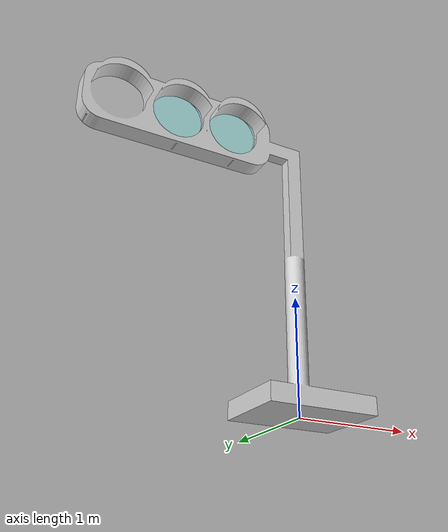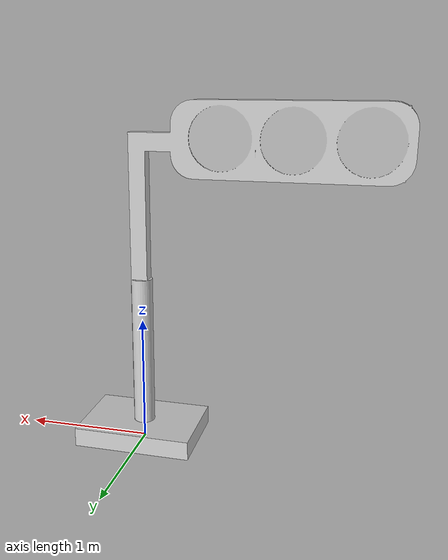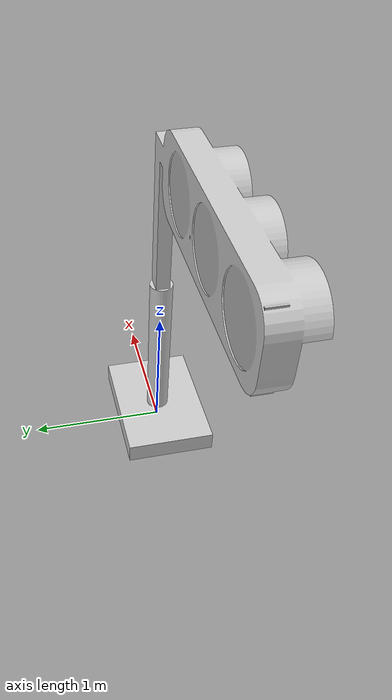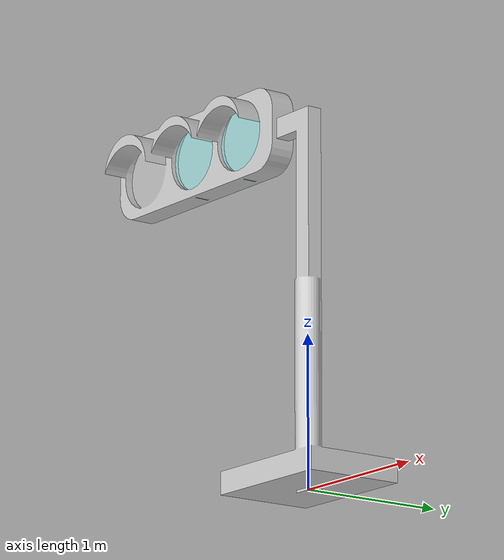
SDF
<?xml version="1.0" ?>
<sdf version="1.5">

  <model name="traffic_light_1">
    <static>true</static>

    <link name="traffic_stand_link">

      <visual name="visual">
        <geometry>
          <mesh>
            <uri>/home/luqman/test_blender_models/lights_1/materials/meshes/traffic_light.dae</uri>
          </mesh>
        </geometry>
      </visual>

      <collision name="collision">
        <geometry>
          <mesh>
            <uri>/home/luqman/test_blender_models/lights_1/materials/meshes/traffic_light.dae</uri>
          </mesh>
        </geometry>
      </collision>

    </link>

    <link name='Red_light_source'>
      <pose>-0.62 0 2.4 1.57 0 0</pose>

      <light name='red' type='spot'>
        <pose>0 0 0.0 1.57 0 0</pose>
        <attenuation>
          <range>30</range>
          <linear>0.05</linear>
        </attenuation>
        <diffuse>0.5 1 1 1</diffuse>
        <specular>1 1 1 1</specular>
        <spot>
          <inner_angle>0.3</inner_angle>
          <outer_angle>0.35</outer_angle>
          <falloff>1</falloff>
        </spot>
        <direction>0 0 -1</direction>
      </light>

      <visual name='red'>
        <geometry>
          <cylinder>
            <radius>0.25</radius>
            <length>0.1</length>
          </cylinder>
          <sphere>
            <radius>0.4</radius>
          </sphere>
        </geometry>
        <transparency>0.6</transparency>
        <material>
          <ambient>0.5 1 1 1</ambient>
          <diffuse>0.5 1 1 1</diffuse>
          <specular>1 1 1 1</specular>
          <emissive>1 0 0 1</emissive>
        </material>
      </visual>
    </link>
<link name='Yellow_light_source'>
<pose>-1.15 0 2.4 1.57 0 0</pose>

<light name='yellow' type='spot'>
  <pose>0 0 0.0 1.57 0 0</pose>
  <attenuation>
    <range>30</range>
    <linear>0.05</linear>
  </attenuation>
  <diffuse>0.5 1 1 1</diffuse>
  <specular>1 1 1 1</specular>
  <spot>
    <inner_angle>0.3</inner_angle>
    <outer_angle>0.35</outer_angle>
    <falloff>1</falloff>
  </spot>
  <direction>0 0 -1</direction>
</light>

<visual name='yellow'>
  <geometry>
    <cylinder>
      <radius>0.25</radius>
      <length>0.1</length>
    </cylinder>
    <sphere>
      <radius>0.4</radius>
    </sphere>
  </geometry>
  <transparency>0.6</transparency>

  <material>
    <ambient>1 1 1 1</ambient>
    <diffuse>0.5 1 1 1</diffuse>
    <specular>1 1 1 1</specular>
    <emissive>1 1 0 1 </emissive>
  </material>

</visual>
</link>
<link name='Green_light_source'>
  <pose>-1.66 0 2.4 1.57 0 0</pose>

  <light name='green' type='spot'>
    <pose>0 0 0.0 1.57 0 0</pose>
    <attenuation>
      <range>30</range>
      <linear>0.05</linear>
    </attenuation>
    <diffuse>0.5 1 1 1</diffuse>
    <specular>1 1 1 1</specular>
    <spot>
      <inner_angle>0.3</inner_angle>
      <outer_angle>0.35</outer_angle>
      <falloff>1</falloff>
    </spot>
    <direction>0 0 -1</direction>
  </light>

  <visual name='green'>
    <geometry>
      <cylinder>
        <radius>0.25</radius>
        <length>0.1</length>
      </cylinder>
      <sphere>
        <radius>0.4</radius>
      </sphere>
    </geometry>
    <transparency>0.6</transparency>
    <material>
      <ambient>6 1 1 1</ambient>
      <diffuse>4 1 1 1</diffuse>
      <specular>1 1 1 1</specular>
      <emissive>0 1 0 1</emissive>
    </material>
  </visual>
  </link>

    <plugin name='light_control' filename='libLedPlugin.so'>
      <enable>true</enable>
      <light>
        <id>Red_light_source/red</id>
        <duration>2</duration>
        <interval>2</interval>
        <enable>true</enable>
      </light>
      <light>
        <id>Yellow_light_source/yellow</id>
        <duration>1</duration>
        <interval>0.4</interval>
        <enable>true</enable>
      </light>
      <light>
        <id>Green_light_source/green</id>
        <duration>1</duration>
        <interval>0.4</interval>
        <enable>true</enable>
      </light>

      </plugin>

  </model>

</sdf>
